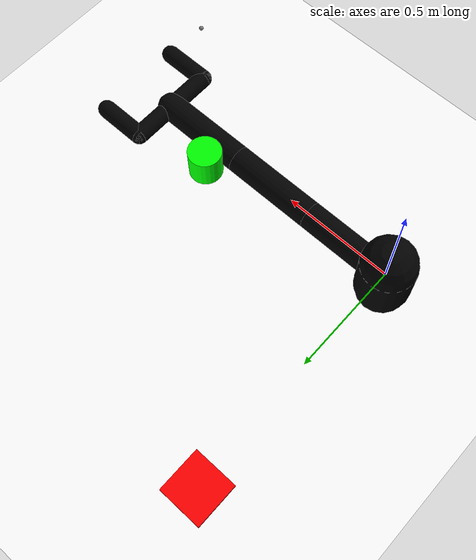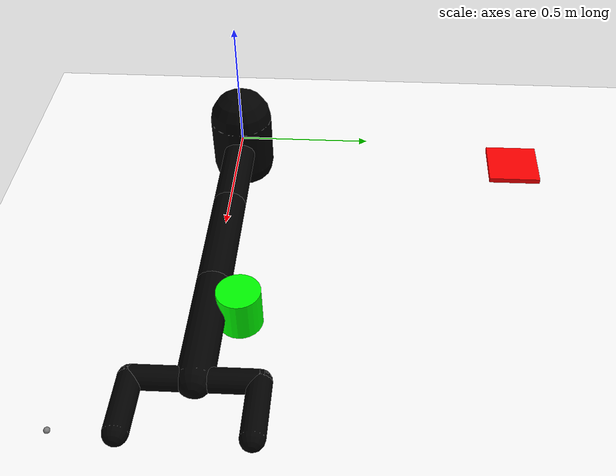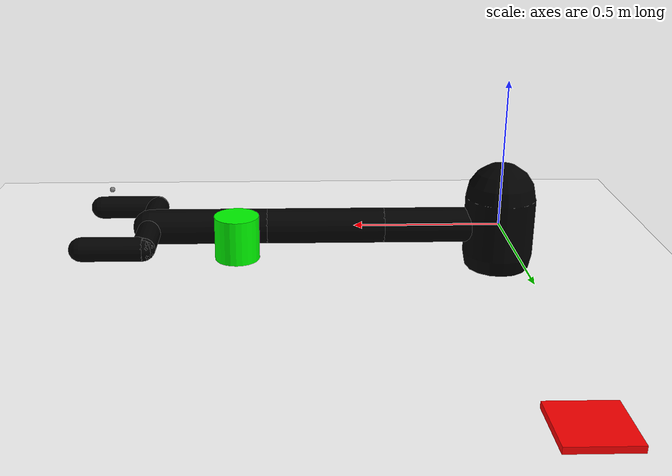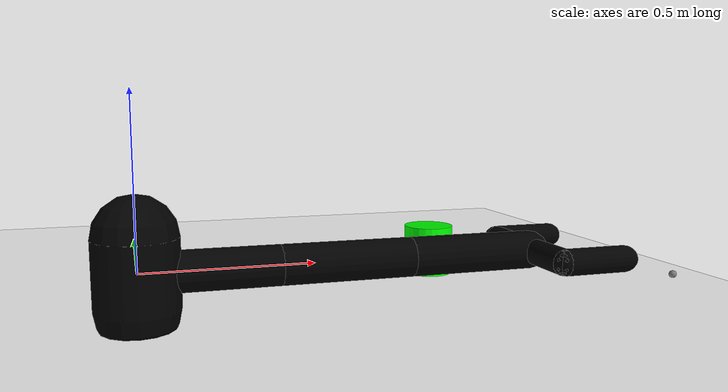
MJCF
<mujoco model="arm3d">
    <compiler inertiafromgeom="true" angle="radian" coordinate="local" />
    <option timestep="0.01" gravity="0 0 0" iterations="20" integrator="Euler" />

    <default>
        <joint armature='0.04' damping="1" limited="true"/>
        <geom friction=".8 .1 .1" density="300" margin="0.002" condim="1" contype="1" conaffinity="1"/>
    </default>

    <worldbody>
        <light diffuse=".5 .5 .5" castshadow="false" pos="0 0 12" dir="0 0 -1"/>
        <geom type="plane" pos="0 0.5 -0.15" rgba="1 1 1 1" size="2 2 0.1" contype="1" conaffinity="1"/>

        <body name="palm" pos="0 0 0">
            <geom rgba="0 0 0 1" type="capsule" fromto="0 0 -0.1 0 0 0.1" size="0.12"/>
            <body name="proximal_1" pos="0 0 0">
                <joint name="proximal_j_1" type="hinge" pos="0 0 0" axis="0 0 1" range="-100.0 100.0" damping="1.0" />
                <geom type="capsule" rgba="0 0 0 1" fromto="0 0 0 0.4 0 0" size="0.06" contype="1" conaffinity="1"/>
                <body name="distal_1" pos="0.4 0 0">
                    <joint name="distal_j_1" type="hinge" pos="0 0 0" axis="0 0 1" range="-2.356 2.356" damping="1.0"/>
                    <geom type="capsule" rgba="0 0 0 1" fromto="0 0 0 0.4 0 0" size="0.06" contype="1" conaffinity="1"/>
                    <body name="distal_2" pos="0.4 0 0">
                        <joint name="distal_j_2" type="hinge" pos="0 0 0" axis="0 0 1" range="-2.356 2.356" damping="1.0"/>
                        <geom type="capsule" rgba="0 0 0 1" fromto="0 0 0 0.4 0 0" size="0.06" contype="1" conaffinity="1"/>
                        <body name="distal_4" pos="0.4 0 0">
                            <body name="arml" pos="0.1 -0.2 0">
                                <site name="tip arml" pos="0.1 -0.2 0" size="0.01" />
                            </body>
                            <body name="armr" pos="0.1 0.2 0">
                                <site name="tip armr" pos="0 0 0" size="0.01" />
                            </body>
                            <joint name="distal_j_3" type="hinge" pos="0 0 0" axis="0 0 1" range="-0.7854 0.7854" damping="0.5"/>
                            <geom type="capsule" rgba="0 0 0 1" fromto="0 -0.2 0 0 0.2 0" size="0.04" contype="1" conaffinity="1" />
                            <geom type="capsule" rgba="0 0 0 1" fromto="0 -0.2 0 0.2 -0.2 0" size="0.04" contype="1" conaffinity="1" />
                            <geom type="capsule" rgba="0 0 0 1" fromto="0 0.2 0 0.2 0.2 0" size="0.04" contype="1" conaffinity="1" />
                        </body>
                    </body>
                </body>
            </body>
        </body>

        <body name="object" pos="0.9 0.1 0">
            <geom rgba="0. 1. 0. 1" type="cylinder" size="0.075 0.075 0.25" density='0.00001' contype="1" conaffinity="1"/>
            <joint name="obj_slidey" type="slide" pos="0.025 0.025 0.025" axis="0 1 0" range="-10.3213 10.3" damping="0.5"/>
            <joint name="obj_slidex" type="slide" pos="0.025 0.025 0.025" axis="1 0 0" range="-10.3213 10.3" damping="0.5"/>
        </body>

       <body name="goal" pos="0.0 1.1 -0.1">
            <geom rgba="1. 0. 0. 1" type="box" size="0.1 0.1 0.01" density='0.00001' contype="0" conaffinity="0"/>
        </body>

    </worldbody>

    <actuator>
        <motor joint="proximal_j_1" ctrlrange="-2 2" ctrllimited="true"/>
        <motor joint="distal_j_1" ctrlrange="-2 2" ctrllimited="true"/>
        <motor joint="distal_j_2" ctrlrange="-2 2" ctrllimited="true"/>
        <motor joint="distal_j_3" ctrlrange="-2 2" ctrllimited="true"/>
    </actuator>
</mujoco>
